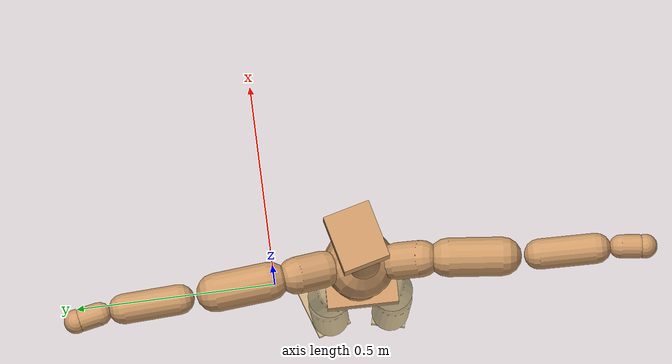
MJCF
<mujoco model="humanoid">
  <compiler coordinate="local" angle="radian"/>
  <default>
    <joint damping="0.0" armature="0.01" stiffness="0.0" limited="true"/>
    <geom conaffinity="1" condim="3" contype="7" margin="0.001" rgba="0.8 0.6 .4 1"/>
  </default>
  <asset>
    <texture type="skybox" builtin="gradient" rgb1=".4 .5 .6" rgb2="0 0 0" width="100" height="100"/>
    <texture builtin="flat" height="1278" mark="cross" markrgb="1 1 1" name="texgeom" random="0.01" rgb1="0.8 0.6 0.4" rgb2="0.8 0.6 0.4" type="cube" width="127"/>
    <texture builtin="checker" height="100" name="texplane" rgb1="0 0 0" rgb2="0.8 0.8 0.8" type="2d" width="100"/>
    <material name="MatPlane" reflectance="0.5" shininess="1" specular="1" texrepeat="60 60" texture="texplane"/>
    <material name="geom" texture="texgeom" texuniform="true"/>
  </asset>
  <worldbody>
    <light cutoff="100" diffuse="1 1 1" dir="-0 0 -1.3" directional="true" exponent="1" pos="0 0 1.3" specular=".1 .1 .1"/>
    <geom conaffinity="1" condim="3" name="floor" pos="0 0 0" rgba="0.8 0.9 0.8 1" size="100 100 .2" type="plane" material="MatPlane"/>
    <body name="Pelvis" pos="-0.0039 -0.2141 0.0157">
      <freejoint name="Pelvis"/>
      <geom type="box" contype="1" conaffinity="1" density="500" pos="-0.0105 0.0002 -0.0076" size="0.0696 0.0894 0.0407" quat="0.9999 0.0000 0.0000 -0.0109" name="Pelvis"/>
      <body name="L_Hip" pos="-0.0213 0.0478 -0.0754">
        <joint name="L_Hip_x" type="hinge" pos="0 0 0" axis="1 0 0" stiffness="800" damping="80" armature="0.02" range="-180.0000 180.0000"/>
        <joint name="L_Hip_y" type="hinge" pos="0 0 0" axis="0 1 0" stiffness="800" damping="80" armature="0.02" range="-180.0000 180.0000"/>
        <joint name="L_Hip_z" type="hinge" pos="0 0 0" axis="0 0 1" stiffness="800" damping="80" armature="0.02" range="-180.0000 180.0000"/>
        <geom type="capsule" contype="1" conaffinity="1" density="500" fromto="0.0020 0.0084 -0.0733 0.0079 0.0336 -0.2934" size="0.0544" name="L_Hip"/>
        <body name="L_Knee" pos="0.0099 0.042 -0.3667">
          <joint name="L_Knee_x" type="hinge" pos="0 0 0" axis="1 0 0" stiffness="800" damping="80" armature="0.02" range="-180.0000 180.0000"/>
          <joint name="L_Knee_y" type="hinge" pos="0 0 0" axis="0 1 0" stiffness="800" damping="80" armature="0.02" range="-180.0000 180.0000"/>
          <joint name="L_Knee_z" type="hinge" pos="0 0 0" axis="0 0 1" stiffness="800" damping="80" armature="0.02" range="-180.0000 180.0000"/>
          <geom type="capsule" contype="1" conaffinity="1" density="500" fromto="-0.0065 -0.0023 -0.0763 -0.0261 -0.0091 -0.3050" size="0.0479" name="L_Knee"/>
          <body name="L_Ankle" pos="-0.0326 -0.0113 -0.3813">
            <joint name="L_Ankle_x" type="hinge" pos="0 0 0" axis="1 0 0" stiffness="800" damping="80" armature="0.02" range="-180.0000 180.0000"/>
            <joint name="L_Ankle_y" type="hinge" pos="0 0 0" axis="0 1 0" stiffness="800" damping="80" armature="0.02" range="-180.0000 180.0000"/>
            <joint name="L_Ankle_z" type="hinge" pos="0 0 0" axis="0 0 1" stiffness="800" damping="80" armature="0.02" range="-180.0000 180.0000"/>
            <geom type="box" contype="1" conaffinity="1" density="500" pos="0.0541 0.0182 -0.0266" size="0.0767 0.0459 0.0195" quat="0.9869 0.0000 0.0000 0.1615" name="L_Ankle"/>
            <body name="L_Toe" pos="0.1082 0.0364 -0.0531">
              <joint name="L_Toe_x" type="hinge" pos="0 0 0" axis="1 0 0" stiffness="500" damping="50" armature="0.02" range="-180.0000 180.0000"/>
              <joint name="L_Toe_y" type="hinge" pos="0 0 0" axis="0 1 0" stiffness="500" damping="50" armature="0.02" range="-180.0000 180.0000"/>
              <joint name="L_Toe_z" type="hinge" pos="0 0 0" axis="0 0 1" stiffness="500" damping="50" armature="0.02" range="-180.0000 180.0000"/>
              <geom type="box" contype="1" conaffinity="1" density="500" pos="0.0000 0.0000 0.0263" size="0.001 0.0023 0.001" quat="0.9860 0.0000 0.0000 0.1668" name="L_Toe"/>
            </body>
          </body>
        </body>
      </body>
      <body name="R_Hip" pos="-0.0169 -0.0503 -0.0839">
        <joint name="R_Hip_x" type="hinge" pos="0 0 0" axis="1 0 0" stiffness="800" damping="80" armature="0.02" range="-180.0000 180.0000"/>
        <joint name="R_Hip_y" type="hinge" pos="0 0 0" axis="0 1 0" stiffness="800" damping="80" armature="0.02" range="-180.0000 180.0000"/>
        <joint name="R_Hip_z" type="hinge" pos="0 0 0" axis="0 0 1" stiffness="800" damping="80" armature="0.02" range="-180.0000 180.0000"/>
        <geom type="capsule" contype="1" conaffinity="1" density="500" fromto="-0.0004 -0.0080 -0.0720 -0.0016 -0.0320 -0.2879" size="0.0536" name="R_Hip"/>
        <body name="R_Knee" pos="-0.002 -0.04 -0.3599">
          <joint name="R_Knee_x" type="hinge" pos="0 0 0" axis="1 0 0" stiffness="800" damping="80" armature="0.02" range="-180.0000 180.0000"/>
          <joint name="R_Knee_y" type="hinge" pos="0 0 0" axis="0 1 0" stiffness="800" damping="80" armature="0.02" range="-180.0000 180.0000"/>
          <joint name="R_Knee_z" type="hinge" pos="0 0 0" axis="0 0 1" stiffness="800" damping="80" armature="0.02" range="-180.0000 180.0000"/>
          <geom type="capsule" contype="1" conaffinity="1" density="500" fromto="-0.0060 0.0034 -0.0749 -0.0239 0.0136 -0.2997" size="0.0484" name="R_Knee"/>
          <body name="R_Ankle" pos="-0.0299 0.017 -0.3746">
            <joint name="R_Ankle_x" type="hinge" pos="0 0 0" axis="1 0 0" stiffness="800" damping="80" armature="0.02" range="-180.0000 180.0000"/>
            <joint name="R_Ankle_y" type="hinge" pos="0 0 0" axis="0 1 0" stiffness="800" damping="80" armature="0.02" range="-180.0000 180.0000"/>
            <joint name="R_Ankle_z" type="hinge" pos="0 0 0" axis="0 0 1" stiffness="800" damping="80" armature="0.02" range="-180.0000 180.0000"/>
            <geom type="box" contype="1" conaffinity="1" density="500" pos="0.0577 -0.0131 -0.0277" size="0.0798 0.0444 0.0197" quat="0.9938 0.0000 0.0000 -0.1112" name="R_Ankle"/>
            <body name="R_Toe" pos="0.1154 -0.0262 -0.0553">
              <joint name="R_Toe_x" type="hinge" pos="0 0 0" axis="1 0 0" stiffness="500" damping="50" armature="0.02" range="-180.0000 180.0000"/>
              <joint name="R_Toe_y" type="hinge" pos="0 0 0" axis="0 1 0" stiffness="500" damping="50" armature="0.02" range="-180.0000 180.0000"/>
              <joint name="R_Toe_z" type="hinge" pos="0 0 0" axis="0 0 1" stiffness="500" damping="50" armature="0.02" range="-180.0000 180.0000"/>
              <geom type="box" contype="1" conaffinity="1" density="500" pos="0.0000 0.0000 0.0285" size="0.0009 0.0022 0.001" quat="0.9949 0.0000 0.0000 -0.1013" name="R_Toe"/>
            </body>
          </body>
        </body>
      </body>
      <body name="Torso" pos="-0.0247 0.0039 0.1137">
        <joint name="Torso_x" type="hinge" pos="0 0 0" axis="1 0 0" stiffness="1000" damping="100" armature="0.02" range="-180.0000 180.0000"/>
        <joint name="Torso_y" type="hinge" pos="0 0 0" axis="0 1 0" stiffness="1000" damping="100" armature="0.02" range="-180.0000 180.0000"/>
        <joint name="Torso_z" type="hinge" pos="0 0 0" axis="0 0 1" stiffness="1000" damping="100" armature="0.02" range="-180.0000 180.0000"/>
        <geom type="capsule" contype="1" conaffinity="1" density="500" fromto="0.0164 0.0027 0.0778 0.0109 0.0018 0.0519" size="0.068" name="Torso"/>
        <body name="Spine" pos="0.0273 0.0045 0.1296">
          <joint name="Spine_x" type="hinge" pos="0 0 0" axis="1 0 0" stiffness="1000" damping="100" armature="0.02" range="-180.0000 180.0000"/>
          <joint name="Spine_y" type="hinge" pos="0 0 0" axis="0 1 0" stiffness="1000" damping="100" armature="0.02" range="-180.0000 180.0000"/>
          <joint name="Spine_z" type="hinge" pos="0 0 0" axis="0 0 1" stiffness="1000" damping="100" armature="0.02" range="-180.0000 180.0000"/>
          <geom type="capsule" contype="1" conaffinity="1" density="500" fromto="0.0017 -0.0005 0.0308 0.0011 -0.0003 0.0205" size="0.0671" name="Spine"/>
          <body name="Chest" pos="0.0028 -0.0009 0.0513">
            <joint name="Chest_x" type="hinge" pos="0 0 0" axis="1 0 0" stiffness="1000" damping="100" armature="0.02" range="-180.0000 180.0000"/>
            <joint name="Chest_y" type="hinge" pos="0 0 0" axis="0 1 0" stiffness="1000" damping="100" armature="0.02" range="-180.0000 180.0000"/>
            <joint name="Chest_z" type="hinge" pos="0 0 0" axis="0 0 1" stiffness="1000" damping="100" armature="0.02" range="-180.0000 180.0000"/>
            <geom type="capsule" contype="1" conaffinity="1" density="500" fromto="-0.0132 -0.0052 0.0747 -0.0088 -0.0034 0.0498" size="0.0873" name="Chest"/>
            <body name="Neck" pos="-0.0307 -0.0148 0.1789">
              <joint name="Neck_x" type="hinge" pos="0 0 0" axis="1 0 0" stiffness="500" damping="50" armature="0.02" range="-180.0000 180.0000"/>
              <joint name="Neck_y" type="hinge" pos="0 0 0" axis="0 1 0" stiffness="500" damping="50" armature="0.02" range="-180.0000 180.0000"/>
              <joint name="Neck_z" type="hinge" pos="0 0 0" axis="0 0 1" stiffness="500" damping="50" armature="0.02" range="-180.0000 180.0000"/>
              <geom type="capsule" contype="1" conaffinity="1" density="500" fromto="0.0078 0.0016 0.0153 0.0311 0.0065 0.0614" size="0.0406" name="Neck"/>
              <body name="Head" pos="0.0388 0.0081 0.0767">
                <joint name="Head_x" type="hinge" pos="0 0 0" axis="1 0 0" stiffness="500" damping="50" armature="0.02" range="-180.0000 180.0000"/>
                <joint name="Head_y" type="hinge" pos="0 0 0" axis="0 1 0" stiffness="500" damping="50" armature="0.02" range="-180.0000 180.0000"/>
                <joint name="Head_z" type="hinge" pos="0 0 0" axis="0 0 1" stiffness="500" damping="50" armature="0.02" range="-180.0000 180.0000"/>
                <geom type="box" contype="1" conaffinity="1" density="500" pos="0.0204 0.0050 0.0394" size="0.0706 0.0581 0.0484" quat="0.9927 0.0000 0.0000 0.1209" name="Head"/>
              </body>
            </body>
            <body name="L_Thorax" pos="-0.0152 0.0638 0.0978">
              <joint name="L_Thorax_x" type="hinge" pos="0 0 0" axis="1 0 0" stiffness="500" damping="50" armature="0.02" range="-180.0000 180.0000"/>
              <joint name="L_Thorax_y" type="hinge" pos="0 0 0" axis="0 1 0" stiffness="500" damping="50" armature="0.02" range="-180.0000 180.0000"/>
              <joint name="L_Thorax_z" type="hinge" pos="0 0 0" axis="0 0 1" stiffness="500" damping="50" armature="0.02" range="-180.0000 180.0000"/>
              <geom type="capsule" contype="1" conaffinity="1" density="500" fromto="-0.0029 0.0222 0.0079 -0.0117 0.0889 0.0315" size="0.0455" name="L_Thorax"/>
              <body name="L_Shoulder" pos="-0.0147 0.1111 0.0394">
                <joint name="L_Shoulder_x" type="hinge" pos="0 0 0" axis="1 0 0" stiffness="500" damping="50" armature="0.02" range="-720.0000 720.0000"/>
                <joint name="L_Shoulder_y" type="hinge" pos="0 0 0" axis="0 1 0" stiffness="500" damping="50" armature="0.02" range="-720.0000 720.0000"/>
                <joint name="L_Shoulder_z" type="hinge" pos="0 0 0" axis="0 0 1" stiffness="500" damping="50" armature="0.02" range="-720.0000 720.0000"/>
                <geom type="capsule" contype="1" conaffinity="1" density="500" fromto="-0.0033 0.0441 -0.0022 -0.0132 0.1762 -0.0089" size="0.0475" name="L_Shoulder"/>
                <body name="L_Elbow" pos="-0.0165 0.2203 -0.0111">
                  <joint name="L_Elbow_x" type="hinge" pos="0 0 0" axis="1 0 0" stiffness="500" damping="50" armature="0.02" range="-720.0000 720.0000"/>
                  <joint name="L_Elbow_y" type="hinge" pos="0 0 0" axis="0 1 0" stiffness="500" damping="50" armature="0.02" range="-720.0000 720.0000"/>
                  <joint name="L_Elbow_z" type="hinge" pos="0 0 0" axis="0 0 1" stiffness="500" damping="50" armature="0.02" range="-720.0000 720.0000"/>
                  <geom type="capsule" contype="1" conaffinity="1" density="500" fromto="-0.0020 0.0454 0.0014 -0.0080 0.1817 0.0058" size="0.037" name="L_Elbow"/>
                  <body name="L_Wrist" pos="-0.01 0.2272 0.0072">
                    <joint name="L_Wrist_x" type="hinge" pos="0 0 0" axis="1 0 0" stiffness="300" damping="30" armature="0.02" range="-180.0000 180.0000"/>
                    <joint name="L_Wrist_y" type="hinge" pos="0 0 0" axis="0 1 0" stiffness="300" damping="30" armature="0.02" range="-180.0000 180.0000"/>
                    <joint name="L_Wrist_z" type="hinge" pos="0 0 0" axis="0 0 1" stiffness="300" damping="30" armature="0.02" range="-180.0000 180.0000"/>
                    <geom type="capsule" contype="1" conaffinity="1" density="500" fromto="-0.0026 0.0146 -0.0018 -0.0104 0.0584 -0.0071" size="0.0289" name="L_Wrist"/>
                    <body name="L_Hand" pos="-0.0129 0.073 -0.0089">
                      <joint name="L_Hand_x" type="hinge" pos="0 0 0" axis="1 0 0" stiffness="300" damping="30" armature="0.02" range="-180.0000 180.0000"/>
                      <joint name="L_Hand_y" type="hinge" pos="0 0 0" axis="0 1 0" stiffness="300" damping="30" armature="0.02" range="-180.0000 180.0000"/>
                      <joint name="L_Hand_z" type="hinge" pos="0 0 0" axis="0 0 1" stiffness="300" damping="30" armature="0.02" range="-180.0000 180.0000"/>
                      <geom type="sphere" contype="1" conaffinity="1" density="500" size="0.0300" pos="0.0000 0.0000 0.0000" name="L_Hand"/>
                    </body>
                  </body>
                </body>
              </body>
            </body>
            <body name="R_Thorax" pos="-0.0199 -0.0747 0.0971">
              <joint name="R_Thorax_x" type="hinge" pos="0 0 0" axis="1 0 0" stiffness="500" damping="50" armature="0.02" range="-180.0000 180.0000"/>
              <joint name="R_Thorax_y" type="hinge" pos="0 0 0" axis="0 1 0" stiffness="500" damping="50" armature="0.02" range="-180.0000 180.0000"/>
              <joint name="R_Thorax_z" type="hinge" pos="0 0 0" axis="0 0 1" stiffness="500" damping="50" armature="0.02" range="-180.0000 180.0000"/>
              <geom type="capsule" contype="1" conaffinity="1" density="500" fromto="-0.0012 -0.0199 0.0080 -0.0050 -0.0797 0.0319" size="0.0452" name="R_Thorax"/>
              <body name="R_Shoulder" pos="-0.0062 -0.0997 0.0399">
                <joint name="R_Shoulder_x" type="hinge" pos="0 0 0" axis="1 0 0" stiffness="500" damping="50" armature="0.02" range="-720.0000 720.0000"/>
                <joint name="R_Shoulder_y" type="hinge" pos="0 0 0" axis="0 1 0" stiffness="500" damping="50" armature="0.02" range="-720.0000 720.0000"/>
                <joint name="R_Shoulder_z" type="hinge" pos="0 0 0" axis="0 0 1" stiffness="500" damping="50" armature="0.02" range="-720.0000 720.0000"/>
                <geom type="capsule" contype="1" conaffinity="1" density="500" fromto="-0.0046 -0.0438 -0.0020 -0.0184 -0.1751 -0.0078" size="0.0476" name="R_Shoulder"/>
                <body name="R_Elbow" pos="-0.023 -0.2189 -0.0098">
                  <joint name="R_Elbow_x" type="hinge" pos="0 0 0" axis="1 0 0" stiffness="500" damping="50" armature="0.02" range="-720.0000 720.0000"/>
                  <joint name="R_Elbow_y" type="hinge" pos="0 0 0" axis="0 1 0" stiffness="500" damping="50" armature="0.02" range="-720.0000 720.0000"/>
                  <joint name="R_Elbow_z" type="hinge" pos="0 0 0" axis="0 0 1" stiffness="500" damping="50" armature="0.02" range="-720.0000 720.0000"/>
                  <geom type="capsule" contype="1" conaffinity="1" density="500" fromto="-0.0013 -0.0460 0.0008 -0.0052 -0.1838 0.0031" size="0.0374" name="R_Elbow"/>
                  <body name="R_Wrist" pos="-0.0065 -0.2298 0.0039">
                    <joint name="R_Wrist_x" type="hinge" pos="0 0 0" axis="1 0 0" stiffness="300" damping="30" armature="0.02" range="-180.0000 180.0000"/>
                    <joint name="R_Wrist_y" type="hinge" pos="0 0 0" axis="0 1 0" stiffness="300" damping="30" armature="0.02" range="-180.0000 180.0000"/>
                    <joint name="R_Wrist_z" type="hinge" pos="0 0 0" axis="0 0 1" stiffness="300" damping="30" armature="0.02" range="-180.0000 180.0000"/>
                    <geom type="capsule" contype="1" conaffinity="1" density="500" fromto="-0.0017 -0.0147 -0.0014 -0.0067 -0.0590 -0.0055" size="0.029" name="R_Wrist"/>
                    <body name="R_Hand" pos="-0.0083 -0.0737 -0.0069">
                      <joint name="R_Hand_x" type="hinge" pos="0 0 0" axis="1 0 0" stiffness="300" damping="30" armature="0.02" range="-180.0000 180.0000"/>
                      <joint name="R_Hand_y" type="hinge" pos="0 0 0" axis="0 1 0" stiffness="300" damping="30" armature="0.02" range="-180.0000 180.0000"/>
                      <joint name="R_Hand_z" type="hinge" pos="0 0 0" axis="0 0 1" stiffness="300" damping="30" armature="0.02" range="-180.0000 180.0000"/>
                      <geom type="sphere" contype="1" conaffinity="1" density="500" size="0.0300" pos="0.0000 0.0000 0.0000" name="R_Hand"/>
                    </body>
                  </body>
                </body>
              </body>
            </body>
          </body>
        </body>
      </body>
    </body>
  </worldbody>
  <actuator>
    <motor name="L_Hip_x" joint="L_Hip_x" gear="500"/>
    <motor name="L_Hip_y" joint="L_Hip_y" gear="500"/>
    <motor name="L_Hip_z" joint="L_Hip_z" gear="500"/>
    <motor name="L_Knee_x" joint="L_Knee_x" gear="500"/>
    <motor name="L_Knee_y" joint="L_Knee_y" gear="500"/>
    <motor name="L_Knee_z" joint="L_Knee_z" gear="500"/>
    <motor name="L_Ankle_x" joint="L_Ankle_x" gear="500"/>
    <motor name="L_Ankle_y" joint="L_Ankle_y" gear="500"/>
    <motor name="L_Ankle_z" joint="L_Ankle_z" gear="500"/>
    <motor name="L_Toe_x" joint="L_Toe_x" gear="500"/>
    <motor name="L_Toe_y" joint="L_Toe_y" gear="500"/>
    <motor name="L_Toe_z" joint="L_Toe_z" gear="500"/>
    <motor name="R_Hip_x" joint="R_Hip_x" gear="500"/>
    <motor name="R_Hip_y" joint="R_Hip_y" gear="500"/>
    <motor name="R_Hip_z" joint="R_Hip_z" gear="500"/>
    <motor name="R_Knee_x" joint="R_Knee_x" gear="500"/>
    <motor name="R_Knee_y" joint="R_Knee_y" gear="500"/>
    <motor name="R_Knee_z" joint="R_Knee_z" gear="500"/>
    <motor name="R_Ankle_x" joint="R_Ankle_x" gear="500"/>
    <motor name="R_Ankle_y" joint="R_Ankle_y" gear="500"/>
    <motor name="R_Ankle_z" joint="R_Ankle_z" gear="500"/>
    <motor name="R_Toe_x" joint="R_Toe_x" gear="500"/>
    <motor name="R_Toe_y" joint="R_Toe_y" gear="500"/>
    <motor name="R_Toe_z" joint="R_Toe_z" gear="500"/>
    <motor name="Torso_x" joint="Torso_x" gear="500"/>
    <motor name="Torso_y" joint="Torso_y" gear="500"/>
    <motor name="Torso_z" joint="Torso_z" gear="500"/>
    <motor name="Spine_x" joint="Spine_x" gear="500"/>
    <motor name="Spine_y" joint="Spine_y" gear="500"/>
    <motor name="Spine_z" joint="Spine_z" gear="500"/>
    <motor name="Chest_x" joint="Chest_x" gear="500"/>
    <motor name="Chest_y" joint="Chest_y" gear="500"/>
    <motor name="Chest_z" joint="Chest_z" gear="500"/>
    <motor name="Neck_x" joint="Neck_x" gear="500"/>
    <motor name="Neck_y" joint="Neck_y" gear="500"/>
    <motor name="Neck_z" joint="Neck_z" gear="500"/>
    <motor name="Head_x" joint="Head_x" gear="500"/>
    <motor name="Head_y" joint="Head_y" gear="500"/>
    <motor name="Head_z" joint="Head_z" gear="500"/>
    <motor name="L_Thorax_x" joint="L_Thorax_x" gear="500"/>
    <motor name="L_Thorax_y" joint="L_Thorax_y" gear="500"/>
    <motor name="L_Thorax_z" joint="L_Thorax_z" gear="500"/>
    <motor name="L_Shoulder_x" joint="L_Shoulder_x" gear="500"/>
    <motor name="L_Shoulder_y" joint="L_Shoulder_y" gear="500"/>
    <motor name="L_Shoulder_z" joint="L_Shoulder_z" gear="500"/>
    <motor name="L_Elbow_x" joint="L_Elbow_x" gear="500"/>
    <motor name="L_Elbow_y" joint="L_Elbow_y" gear="500"/>
    <motor name="L_Elbow_z" joint="L_Elbow_z" gear="500"/>
    <motor name="L_Wrist_x" joint="L_Wrist_x" gear="500"/>
    <motor name="L_Wrist_y" joint="L_Wrist_y" gear="500"/>
    <motor name="L_Wrist_z" joint="L_Wrist_z" gear="500"/>
    <motor name="L_Hand_x" joint="L_Hand_x" gear="500"/>
    <motor name="L_Hand_y" joint="L_Hand_y" gear="500"/>
    <motor name="L_Hand_z" joint="L_Hand_z" gear="500"/>
    <motor name="R_Thorax_x" joint="R_Thorax_x" gear="500"/>
    <motor name="R_Thorax_y" joint="R_Thorax_y" gear="500"/>
    <motor name="R_Thorax_z" joint="R_Thorax_z" gear="500"/>
    <motor name="R_Shoulder_x" joint="R_Shoulder_x" gear="500"/>
    <motor name="R_Shoulder_y" joint="R_Shoulder_y" gear="500"/>
    <motor name="R_Shoulder_z" joint="R_Shoulder_z" gear="500"/>
    <motor name="R_Elbow_x" joint="R_Elbow_x" gear="500"/>
    <motor name="R_Elbow_y" joint="R_Elbow_y" gear="500"/>
    <motor name="R_Elbow_z" joint="R_Elbow_z" gear="500"/>
    <motor name="R_Wrist_x" joint="R_Wrist_x" gear="500"/>
    <motor name="R_Wrist_y" joint="R_Wrist_y" gear="500"/>
    <motor name="R_Wrist_z" joint="R_Wrist_z" gear="500"/>
    <motor name="R_Hand_x" joint="R_Hand_x" gear="500"/>
    <motor name="R_Hand_y" joint="R_Hand_y" gear="500"/>
    <motor name="R_Hand_z" joint="R_Hand_z" gear="500"/>
  </actuator>
  <contact>
    <exclude body1="Torso" body2="Chest"/>
    <exclude body1="Head" body2="Chest"/>
    <exclude body1="R_Knee" body2="R_Toe"/>
    <exclude body1="R_Knee" body2="L_Ankle"/>
    <exclude body1="R_Knee" body2="L_Toe"/>
    <exclude body1="L_Knee" body2="L_Toe"/>
    <exclude body1="L_Knee" body2="R_Ankle"/>
    <exclude body1="L_Knee" body2="R_Toe"/>
    <exclude body1="L_Shoulder" body2="Chest"/>
    <exclude body1="R_Shoulder" body2="Chest"/>
  </contact>
  <sensor/>
  <size njmax="700" nconmax="700"/>
</mujoco>
